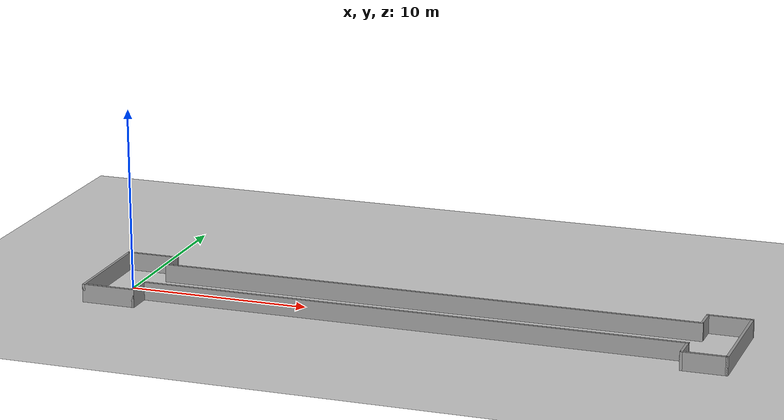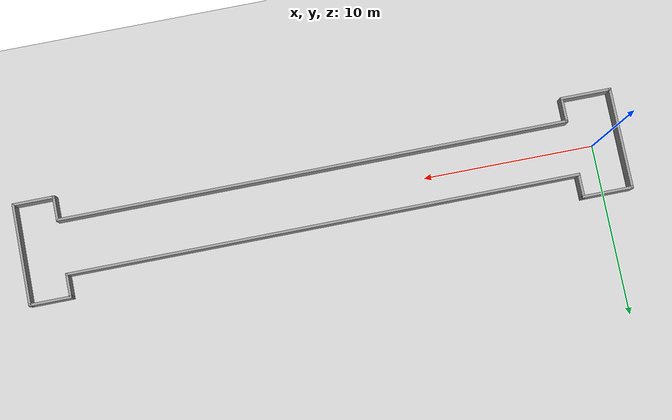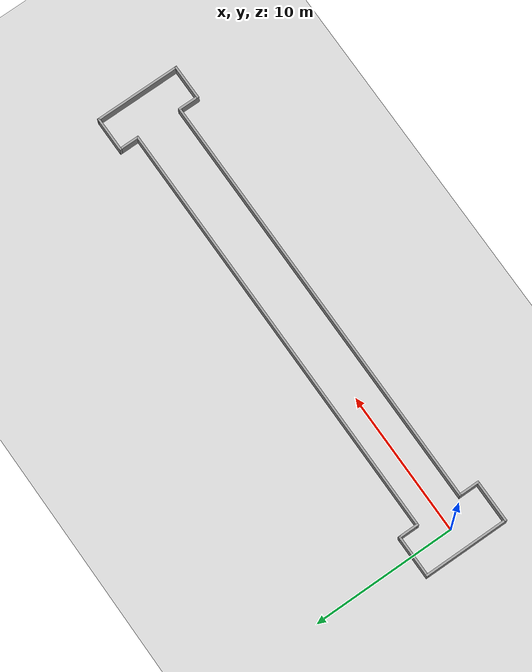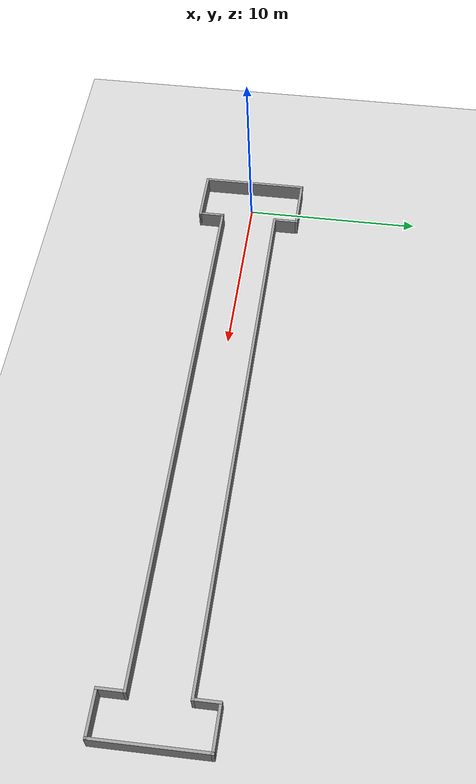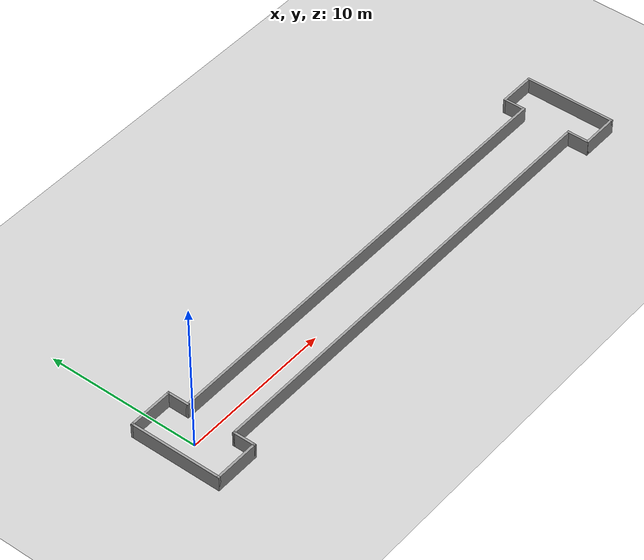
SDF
<sdf version="1.7">
 <world name="default">
  <light name="sun" type="directional">
   <pose>0 0 10 0 -0 0</pose>
   <diffuse>0.8 0.8 0.8 1</diffuse>
   <specular>0.2 0.2 0.2 1</specular>
   <attenuation>
    <range>1000</range>
    <constant>0.9</constant>
    <linear>0.01</linear>
    <quadratic>0.001</quadratic>
   </attenuation>
   <direction>-0.5 0.1 -0.9</direction>
   <spot><inner_angle>0</inner_angle><outer_angle>0</outer_angle><falloff>0</falloff></spot>
  </light>
  <model name="ground_plane">
   <static>1</static>
   <link name="link">
    <collision name="collision">
     <geometry><plane><normal>0 0 1</normal><size>100 100</size></plane></geometry>
     <surface>
      <contact><collide_bitmask>65535</collide_bitmask></contact>
      <friction><ode><mu>100</mu><mu2>50</mu2></ode></friction>
     </surface>
    </collision>
    <visual name="visual">
     <cast_shadows>0</cast_shadows>
     <geometry><plane><normal>0 0 1</normal><size>100 100</size></plane></geometry>
     <material>
      <script><uri>file://media/materials/scripts/gazebo.material</uri><name>Gazebo/Grey</name></script>
     </material>
    </visual>
   </link>
  </model>
  <gravity>0 0 -9.8</gravity>
  <magnetic_field>6e-06 2.3e-05 -4.2e-05</magnetic_field>
  <atmosphere type="adiabatic"/>
  <physics type="ode">
   <max_step_size>0.001</max_step_size>
   <real_time_factor>1</real_time_factor>
   <real_time_update_rate>1000</real_time_update_rate>
  </physics>
  <scene><ambient>0.4 0.4 0.4 1</ambient><background>0.7 0.7 0.7 1</background><shadows>1</shadows></scene>
  <spherical_coordinates>
   <surface_model>EARTH_WGS84</surface_model>
   <latitude_deg>0</latitude_deg>
   <longitude_deg>0</longitude_deg>
   <elevation>0</elevation>
   <heading_deg>0</heading_deg>
  </spherical_coordinates>
  <model name="corridor">
   <pose>16.0107 -0.01353 0 0 -0 0</pose>
   <link name="Wall_10">
    <collision name="Wall_10_Collision">
     <geometry><box><size>3 0.15 1</size></box></geometry>
     <pose>0 0 0.5 0 -0 0</pose>
    </collision>
    <visual name="Wall_10_Visual">
     <pose>0 0 0.5 0 -0 0</pose>
     <geometry><box><size>3 0.15 1</size></box></geometry>
     <material>
      <script><uri>file://media/materials/scripts/gazebo.material</uri><name>Gazebo/Grey</name></script>
      <ambient>1 1 1 1</ambient>
     </material>
     <meta><layer>0</layer></meta>
    </visual>
    <pose>-16.1 -2.925 0 0 -0 0</pose>
   </link>
   <link name="Wall_11">
    <collision name="Wall_11_Collision">
     <geometry><box><size>1.5 0.15 1</size></box></geometry>
     <pose>0 0 0.5 0 -0 0</pose>
    </collision>
    <visual name="Wall_11_Visual">
     <pose>0 0 0.5 0 -0 0</pose>
     <geometry><box><size>1.5 0.15 1</size></box></geometry>
     <material>
      <script><uri>file://media/materials/scripts/gazebo.material</uri><name>Gazebo/Grey</name></script>
      <ambient>1 1 1 1</ambient>
     </material>
     <meta><layer>0</layer></meta>
    </visual>
    <pose>-14.675 -2.25 0 0 -0 1.5708</pose>
   </link>
   <link name="Wall_12">
    <collision name="Wall_12_Collision">
     <geometry><box><size>30 0.15 1</size></box></geometry>
     <pose>0 0 0.5 0 -0 0</pose>
    </collision>
    <visual name="Wall_12_Visual">
     <pose>0 0 0.5 0 -0 0</pose>
     <geometry><box><size>30 0.15 1</size></box></geometry>
     <material>
      <script><uri>file://media/materials/scripts/gazebo.material</uri><name>Gazebo/Grey</name></script>
      <ambient>1 1 1 1</ambient>
     </material>
     <meta><layer>0</layer></meta>
    </visual>
    <pose>0.25 -1.575 0 0 -0 0</pose>
   </link>
   <link name="Wall_13">
    <collision name="Wall_13_Collision">
     <geometry><box><size>1.5 0.15 1</size></box></geometry>
     <pose>0 0 0.5 0 -0 0</pose>
    </collision>
    <visual name="Wall_13_Visual">
     <pose>0 0 0.5 0 -0 0</pose>
     <geometry><box><size>1.5 0.15 1</size></box></geometry>
     <material>
      <script><uri>file://media/materials/scripts/gazebo.material</uri><name>Gazebo/Grey</name></script>
      <ambient>1 1 1 1</ambient>
     </material>
     <meta><layer>0</layer></meta>
    </visual>
    <pose>15.175 -2.25 0 0 -0 -1.5708</pose>
   </link>
   <link name="Wall_14">
    <collision name="Wall_14_Collision">
     <geometry><box><size>2.5 0.15 1</size></box></geometry>
     <pose>0 0 0.5 0 -0 0</pose>
    </collision>
    <visual name="Wall_14_Visual">
     <pose>0 0 0.5 0 -0 0</pose>
     <geometry><box><size>2.5 0.15 1</size></box></geometry>
     <material>
      <script><uri>file://media/materials/scripts/gazebo.material</uri><name>Gazebo/Grey</name></script>
      <ambient>1 1 1 1</ambient>
     </material>
     <meta><layer>0</layer></meta>
    </visual>
    <pose>16.35 -2.925 0 0 -0 0</pose>
   </link>
   <link name="Wall_15">
    <collision name="Wall_15_Collision">
     <geometry><box><size>6 0.15 1</size></box></geometry>
     <pose>0 0 0.5 0 -0 0</pose>
    </collision>
    <visual name="Wall_15_Visual">
     <pose>0 0 0.5 0 -0 0</pose>
     <geometry><box><size>6 0.15 1</size></box></geometry>
     <material>
      <script><uri>file://media/materials/scripts/gazebo.material</uri><name>Gazebo/Grey</name></script>
      <ambient>1 1 1 1</ambient>
     </material>
     <meta><layer>0</layer></meta>
    </visual>
    <pose>17.525 -0 0 0 -0 1.5708</pose>
   </link>
   <link name="Wall_16">
    <collision name="Wall_16_Collision">
     <geometry><box><size>2.5 0.15 1</size></box></geometry>
     <pose>0 0 0.5 0 -0 0</pose>
    </collision>
    <visual name="Wall_16_Visual">
     <pose>0 0 0.5 0 -0 0</pose>
     <geometry><box><size>2.5 0.15 1</size></box></geometry>
     <material>
      <script><uri>file://media/materials/scripts/gazebo.material</uri><name>Gazebo/Grey</name></script>
      <ambient>1 1 1 1</ambient>
     </material>
     <meta><layer>0</layer></meta>
    </visual>
    <pose>16.35 2.925 0 0 -0 3.14159</pose>
   </link>
   <link name="Wall_17">
    <collision name="Wall_17_Collision">
     <geometry><box><size>1.46958 0.15 1</size></box></geometry>
     <pose>0 0 0.5 0 -0 0</pose>
    </collision>
    <visual name="Wall_17_Visual">
     <pose>0 0 0.5 0 -0 0</pose>
     <geometry><box><size>1.46958 0.15 1</size></box></geometry>
     <material>
      <script><uri>file://media/materials/scripts/gazebo.material</uri><name>Gazebo/Grey</name></script>
      <ambient>1 1 1 1</ambient>
     </material>
     <meta><layer>0</layer></meta>
    </visual>
    <pose>15.175 2.265 0 0 -0 -1.5708</pose>
   </link>
   <link name="Wall_18">
    <collision name="Wall_18_Collision">
     <geometry><box><size>30 0.15 1</size></box></geometry>
     <pose>0 0 0.5 0 -0 0</pose>
    </collision>
    <visual name="Wall_18_Visual">
     <pose>0 0 0.5 0 -0 0</pose>
     <geometry><box><size>30 0.15 1</size></box></geometry>
     <material>
      <script><uri>file://media/materials/scripts/gazebo.material</uri><name>Gazebo/Grey</name></script>
      <ambient>1 1 1 1</ambient>
     </material>
     <meta><layer>0</layer></meta>
    </visual>
    <pose>0.25 1.6055 0 0 -0 3.14156</pose>
   </link>
   <link name="Wall_19">
    <collision name="Wall_19_Collision">
     <geometry><box><size>1.469 0.15 1</size></box></geometry>
     <pose>0 0 0.5 0 -0 0</pose>
    </collision>
    <visual name="Wall_19_Visual">
     <pose>0 0 0.5 0 -0 0</pose>
     <geometry><box><size>1.469 0.15 1</size></box></geometry>
     <material>
      <script><uri>file://media/materials/scripts/gazebo.material</uri><name>Gazebo/Grey</name></script>
      <ambient>1 1 1 1</ambient>
     </material>
     <meta><layer>0</layer></meta>
    </visual>
    <pose>-14.675 2.2655 0 0 -0 1.5708</pose>
   </link>
   <link name="Wall_20">
    <collision name="Wall_20_Collision">
     <geometry><box><size>3 0.15 1</size></box></geometry>
     <pose>0 0 0.5 0 -0 0</pose>
    </collision>
    <visual name="Wall_20_Visual">
     <pose>0 0 0.5 0 -0 0</pose>
     <geometry><box><size>3 0.15 1</size></box></geometry>
     <material>
      <script><uri>file://media/materials/scripts/gazebo.material</uri><name>Gazebo/Grey</name></script>
      <ambient>1 1 1 1</ambient>
     </material>
     <meta><layer>0</layer></meta>
    </visual>
    <pose>-16.1 2.925 0 0 -0 3.14159</pose>
   </link>
   <link name="Wall_8">
    <collision name="Wall_8_Collision">
     <geometry><box><size>6 0.15 1</size></box></geometry>
     <pose>0 0 0.5 0 -0 0</pose>
    </collision>
    <visual name="Wall_8_Visual">
     <pose>0 0 0.5 0 -0 0</pose>
     <geometry><box><size>6 0.15 1</size></box></geometry>
     <material>
      <script><uri>file://media/materials/scripts/gazebo.material</uri><name>Gazebo/Grey</name></script>
      <ambient>1 1 1 1</ambient>
     </material>
     <meta><layer>0</layer></meta>
    </visual>
    <pose>-17.525 -0 0 0 -0 -1.5708</pose>
   </link>
   <static>1</static>
  </model>
 </world>
</sdf>
